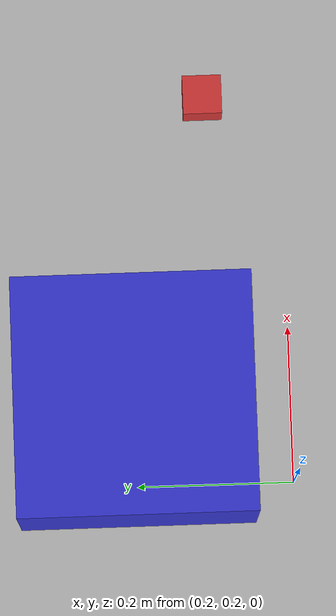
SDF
<?xml version="1.0" ?>
<sdf version="1.7">
  <world name="gp7_world">
    <model name="ground_plane">
      <static>true</static>
      <link name="link">
        <collision name="collision">
          <geometry>
            <plane>
              <normal>0 0 1</normal>
              <size>100 100</size>
            </plane>
          </geometry>
          <surface>
            <contact>
              <collide_without_contact>false</collide_without_contact>
            </contact>
            <friction>
              <ode/>
            </friction>
          </surface>
        </collision>

        <visual name="visual">
          <geometry>
            <plane>
              <normal>0 0 1</normal>
              <size>100 100</size>
            </plane>
          </geometry>
          <material>
            <ambient>0.7 0.7 0.7 1</ambient>
            <diffuse>0.7 0.7 0.7 1</diffuse>
          </material>
        </visual>
      </link>
    </model>
    <light type="directional" name="sun">
      <cast_shadows>true</cast_shadows>
      <pose>0 0 10 0 0 0</pose>
      <diffuse>1 1 1 1</diffuse>
      <specular>0.1 0.1 0.1 1</specular>
      <direction>-0.5 0.5 -1</direction>
    </light>

    <model name="box_A">
      <static>true</static>
      <pose>0.30 0.40 0.10 0 0 0</pose>
      <link name="link">
        <collision name="collision">
          <geometry>
            <box>
              <size>0.30 0.30 0.20</size>
            </box>
          </geometry>
        </collision>
        <visual name="visual">
          <geometry>
            <box>
              <size>0.30 0.30 0.20</size>
            </box>
          </geometry>
          <material>
            <ambient>0.2 0.2 0.8 1</ambient>
            <diffuse>0.2 0.2 0.8 1</diffuse>
          </material>
        </visual>
      </link>
    </model>

    <model name="box_B">
      <static>true</static>
      <pose>0.70 0.30 0.025 0 0 0</pose>
      <link name="link">
        <collision name="collision">
          <geometry>
            <box>
              <size>0.05 0.05 0.05</size>
            </box>
          </geometry>
        </collision>
        <visual name="visual">
          <geometry>
            <box>
              <size>0.05 0.05 0.05</size>
            </box>
          </geometry>
          <material>
            <ambient>0.8 0.2 0.2 1</ambient>
            <diffuse>0.8 0.2 0.2 1</diffuse>
          </material>
        </visual>
      </link>
    </model>

  </world>
</sdf>
